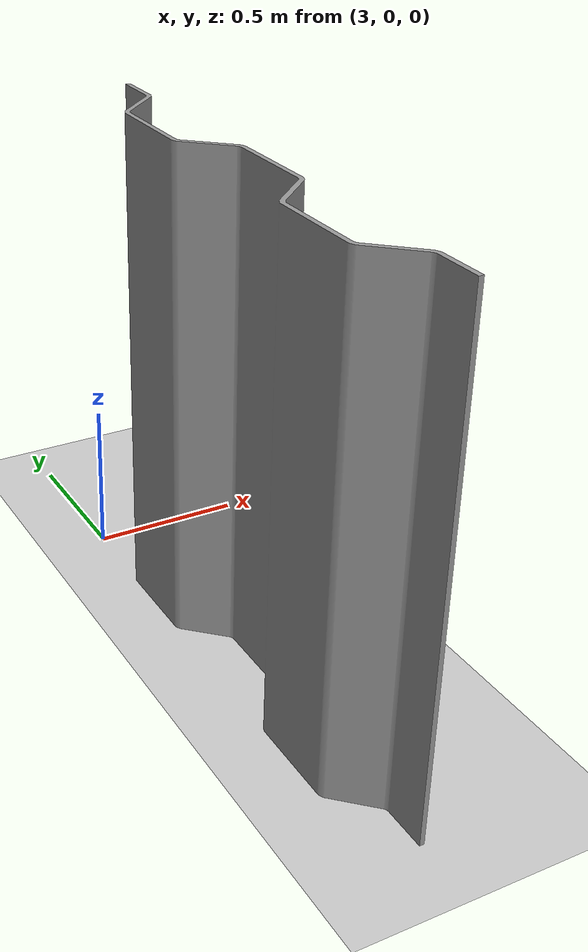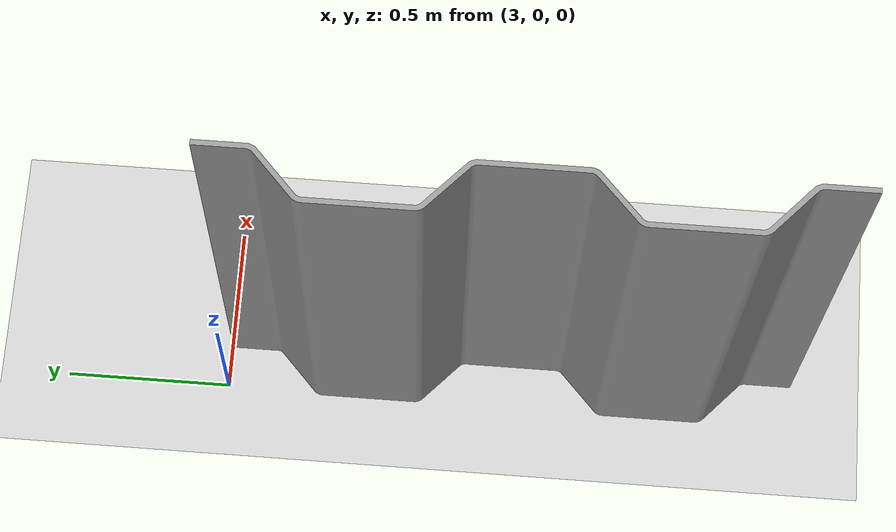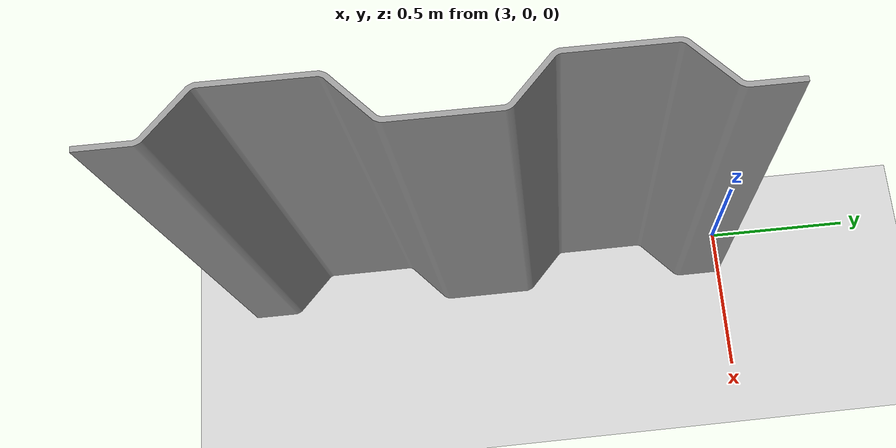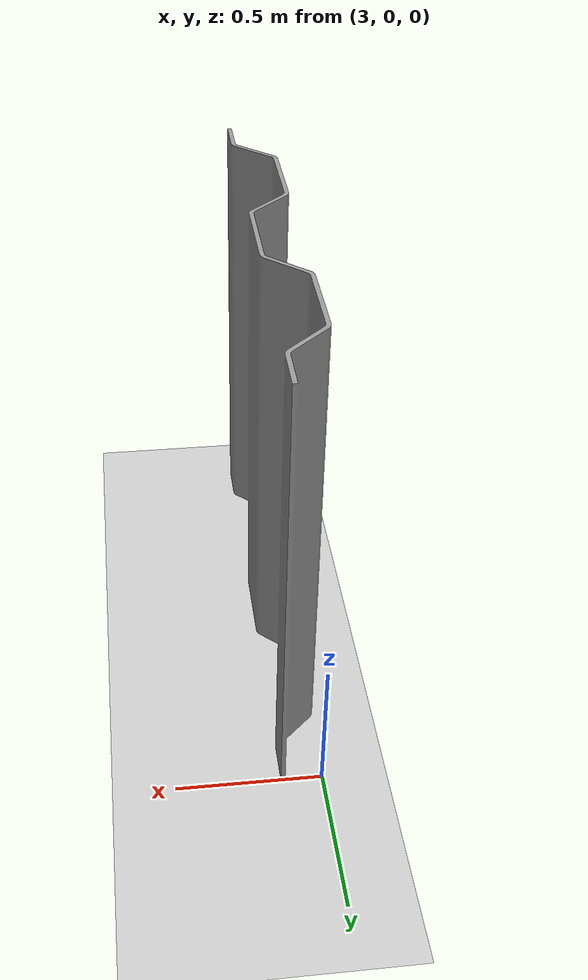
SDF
<?xml version="1.0"?>
<sdf version="1.4">
  <world name="default">
    <include>
      <uri>model://ground_plane</uri>
    </include>
    <include>
      <uri>model://sun</uri>
    </include>
    <model name="wood_bee_hive_wall">
      <pose>3 0 0  0 0 0</pose>
      <static>true</static>
      <link name="body">
        <collision name='collision'>
          <geometry>
            <mesh><uri>model://worlds/mesh/bee_hive_2.stl</uri></mesh>
          </geometry>
      </collision>
      <visual name="visual">
        <geometry>
          <mesh>
            <uri>model://worlds/mesh/bee_hive_2.stl</uri>
              <scale>1.0 1.0 1.0</scale>
          </mesh>
          </geometry>
          <material>
            <script>
              <name>Gazebo/Grey</name>
            </script>
          </material>
      </visual>
      <inertial>
        <mass>1</mass>
        <inertia>
          <ixx>0.145833</ixx>
          <ixy>0</ixy>
          <ixz>0</ixz>
          <iyy>0.145833</iyy>
          <iyz>0</iyz>
          <izz>0.125</izz>
        </inertia>
      </inertial>
      </link>
    </model>
  </world>
</sdf>
